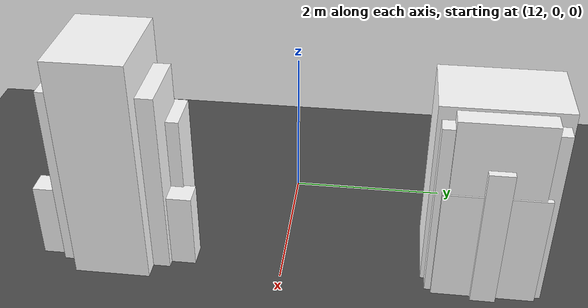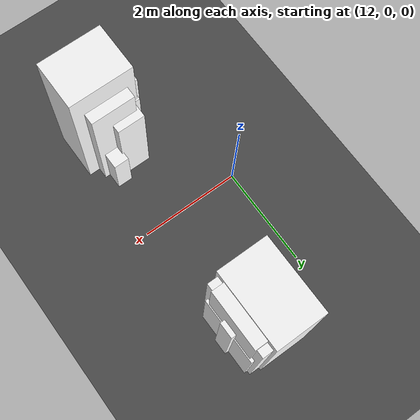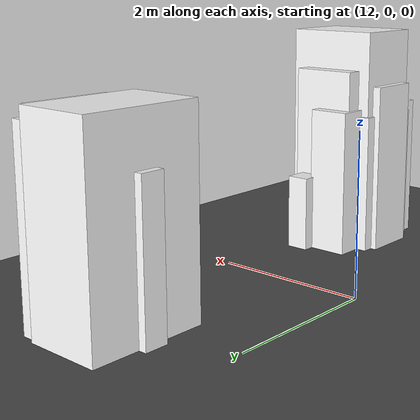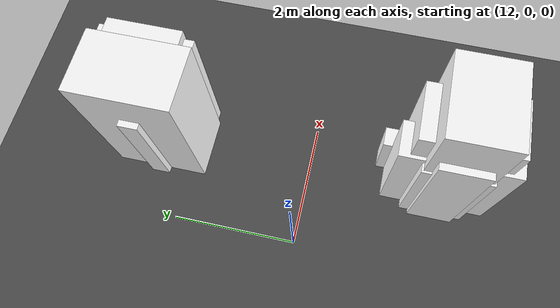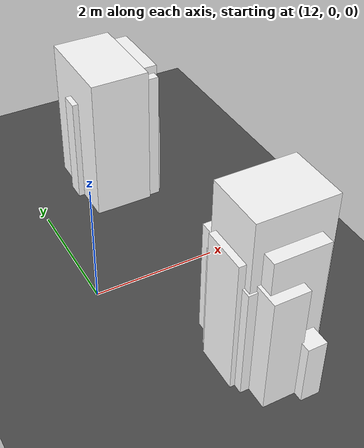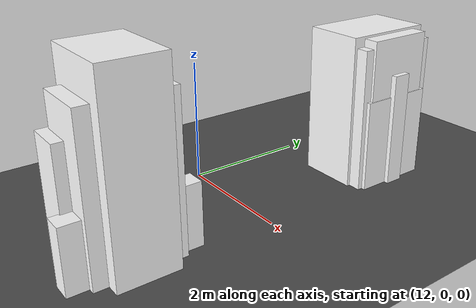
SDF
<sdf version="1.6">
 <world name="mirror_edge_world">
  <model name="ground_plane">
   <static>true</static>
   <link name="link">
    <collision name="collision">
     <geometry><plane><normal>0 0 1</normal><size>100 100</size></plane></geometry>
    </collision>
    <visual name="visual">
     <geometry><plane><normal>0 0 1</normal><size>100 100</size></plane></geometry>
     <material>
      <ambient>0.3 0.3 0.3 1</ambient>
      <diffuse>0.3 0.3 0.3 1</diffuse>
      <specular>0.5 0.5 0.5 1</specular>
      <emissive>0 0 0 1</emissive>
     </material>
    </visual>
   </link>
  </model>
  <model name="roadside_block_0_42_0">
   <static>true</static>
   <link name="link">
    <pose>13.76763786917452 -2.1033290080100766 1.3803398939745606 0 0 0</pose>
    <collision name="collision">
     <geometry><box><size>0.7788029403641517 0.7956750949372158 2.760679787949121</size></box></geometry>
    </collision>
    <visual name="visual">
     <geometry><box><size>0.7788029403641517 0.7956750949372158 2.760679787949121</size></box></geometry>
     <material>
      <ambient>1 1 1 1</ambient>
      <diffuse>1 1 1 1</diffuse>
      <specular>0.9 0.9 0.9 1</specular>
      <emissive>0.05 0.05 0.05 1</emissive>
     </material>
    </visual>
   </link>
  </model>
  <model name="roadside_block_0_43_0">
   <static>true</static>
   <link name="link">
    <pose>13.737724485107247 -2.1033290080100766 0.5 0 0 0</pose>
    <collision name="collision"><geometry><box><size>0.3 2.0 1.0</size></box></geometry></collision>
    <visual name="visual">
     <geometry><box><size>0.3 2.0 1.0</size></box></geometry>
     <material>
      <ambient>1 1 1 1</ambient>
      <diffuse>1 1 1 1</diffuse>
      <specular>0.9 0.9 0.9 1</specular>
      <emissive>0.05 0.05 0.05 1</emissive>
     </material>
    </visual>
   </link>
  </model>
  <model name="roadside_block_0_44_0">
   <static>true</static>
   <link name="link">
    <pose>13.707811101039972 2.496670991989923 1.0600478861862659 0 0 0</pose>
    <collision name="collision">
     <geometry><box><size>0.40122112812187394 1.3804413422950221 2.1200957723725318</size></box></geometry>
    </collision>
    <visual name="visual">
     <geometry><box><size>0.40122112812187394 1.3804413422950221 2.1200957723725318</size></box></geometry>
     <material>
      <ambient>1 1 1 1</ambient>
      <diffuse>1 1 1 1</diffuse>
      <specular>0.9 0.9 0.9 1</specular>
      <emissive>0.05 0.05 0.05 1</emissive>
     </material>
    </visual>
   </link>
  </model>
  <model name="roadside_block_0_45_0">
   <static>true</static>
   <link name="link">
    <pose>13.6778977169727 2.496670991989923 0.5 0 0 0</pose>
    <collision name="collision">
     <geometry><box><size>0.3 0.5637933193951308 1.0</size></box></geometry>
    </collision>
    <visual name="visual">
     <geometry><box><size>0.3 0.5637933193951308 1.0</size></box></geometry>
     <material>
      <ambient>1 1 1 1</ambient>
      <diffuse>1 1 1 1</diffuse>
      <specular>0.9 0.9 0.9 1</specular>
      <emissive>0.05 0.05 0.05 1</emissive>
     </material>
    </visual>
   </link>
  </model>
  <model name="roadside_block_0_46_0">
   <static>true</static>
   <link name="link">
    <pose>13.647984332905427 2.496670991989923 1.2294125881920335 0 0 0</pose>
    <collision name="collision">
     <geometry><box><size>0.8181149098422523 1.1003234568358744 2.458825176384067</size></box></geometry>
    </collision>
    <visual name="visual">
     <geometry><box><size>0.8181149098422523 1.1003234568358744 2.458825176384067</size></box></geometry>
     <material>
      <ambient>1 1 1 1</ambient>
      <diffuse>1 1 1 1</diffuse>
      <specular>0.9 0.9 0.9 1</specular>
      <emissive>0.05 0.05 0.05 1</emissive>
     </material>
    </visual>
   </link>
  </model>
  <model name="roadside_block_0_47_0">
   <static>true</static>
   <link name="link">
    <pose>13.618070948838152 2.496670991989923 1.1638799464638891 0 0 0</pose>
    <collision name="collision">
     <geometry><box><size>0.7916794082345031 1.400413953586316 2.3277598929277783</size></box></geometry>
    </collision>
    <visual name="visual">
     <geometry><box><size>0.7916794082345031 1.400413953586316 2.3277598929277783</size></box></geometry>
     <material>
      <ambient>1 1 1 1</ambient>
      <diffuse>1 1 1 1</diffuse>
      <specular>0.9 0.9 0.9 1</specular>
      <emissive>0.05 0.05 0.05 1</emissive>
     </material>
    </visual>
   </link>
  </model>
  <model name="roadside_block_0_48_0">
   <static>true</static>
   <link name="link">
    <pose>13.58815756477088 -2.1033290080100766 1.4853851885821556 0 0 0</pose>
    <collision name="collision">
     <geometry><box><size>1.229094731846194 0.948628093215531 2.9707703771643112</size></box></geometry>
    </collision>
    <visual name="visual">
     <geometry><box><size>1.229094731846194 0.948628093215531 2.9707703771643112</size></box></geometry>
     <material>
      <ambient>1 1 1 1</ambient>
      <diffuse>1 1 1 1</diffuse>
      <specular>0.9 0.9 0.9 1</specular>
      <emissive>0.05 0.05 0.05 1</emissive>
     </material>
    </visual>
   </link>
  </model>
  <model name="roadside_block_0_49_0">
   <static>true</static>
   <link name="link">
    <pose>13.558244180703607 -2.1033290080100766 1.2272705775469603 0 0 0</pose>
    <collision name="collision">
     <geometry><box><size>0.8566635081162102 1.3824336846027712 2.4545411550939207</size></box></geometry>
    </collision>
    <visual name="visual">
     <geometry><box><size>0.8566635081162102 1.3824336846027712 2.4545411550939207</size></box></geometry>
     <material>
      <ambient>1 1 1 1</ambient>
      <diffuse>1 1 1 1</diffuse>
      <specular>0.9 0.9 0.9 1</specular>
      <emissive>0.05 0.05 0.05 1</emissive>
     </material>
    </visual>
   </link>
  </model>
  <model name="roadside_block_0_50_0">
   <static>true</static>
   <link name="link">
    <pose>13.528330796636332 -2.1033290080100766 0.6718742228478987 0 0 0</pose>
    <collision name="collision">
     <geometry><box><size>0.872315107051598 0.6748088709553275 1.3437484456957973</size></box></geometry>
    </collision>
    <visual name="visual">
     <geometry><box><size>0.872315107051598 0.6748088709553275 1.3437484456957973</size></box></geometry>
     <material>
      <ambient>1 1 1 1</ambient>
      <diffuse>1 1 1 1</diffuse>
      <specular>0.9 0.9 0.9 1</specular>
      <emissive>0.05 0.05 0.05 1</emissive>
     </material>
    </visual>
   </link>
  </model>
  <model name="roadside_block_0_51_0">
   <static>true</static>
   <link name="link">
    <pose>13.49841741256906 2.496670991989923 0.7461830587182772 0 0 0</pose>
    <collision name="collision">
     <geometry><box><size>1.1567946021546198 1.2454959590467978 1.4923661174365543</size></box></geometry>
    </collision>
    <visual name="visual">
     <geometry><box><size>1.1567946021546198 1.2454959590467978 1.4923661174365543</size></box></geometry>
     <material>
      <ambient>1 1 1 1</ambient>
      <diffuse>1 1 1 1</diffuse>
      <specular>0.9 0.9 0.9 1</specular>
      <emissive>0.05 0.05 0.05 1</emissive>
     </material>
    </visual>
   </link>
  </model>
  <model name="roadside_block_0_52_0">
   <static>true</static>
   <link name="link">
    <pose>13.468504028501787 2.496670991989923 0.5 0 0 0</pose>
    <collision name="collision">
     <geometry><box><size>1.075347550247149 1.1275048168967032 1.0</size></box></geometry>
    </collision>
    <visual name="visual">
     <geometry><box><size>1.075347550247149 1.1275048168967032 1.0</size></box></geometry>
     <material>
      <ambient>1 1 1 1</ambient>
      <diffuse>1 1 1 1</diffuse>
      <specular>0.9 0.9 0.9 1</specular>
      <emissive>0.05 0.05 0.05 1</emissive>
     </material>
    </visual>
   </link>
  </model>
  <model name="roadside_block_0_53_0">
   <static>true</static>
   <link name="link">
    <pose>13.438590644434512 2.496670991989923 0.9287234621015706 0 0 0</pose>
    <collision name="collision">
     <geometry><box><size>1.4214285844566805 0.3 1.8574469242031413</size></box></geometry>
    </collision>
    <visual name="visual">
     <geometry><box><size>1.4214285844566805 0.3 1.8574469242031413</size></box></geometry>
     <material>
      <ambient>1 1 1 1</ambient>
      <diffuse>1 1 1 1</diffuse>
      <specular>0.9 0.9 0.9 1</specular>
      <emissive>0.05 0.05 0.05 1</emissive>
     </material>
    </visual>
   </link>
  </model>
  <model name="roadside_block_0_54_0">
   <static>true</static>
   <link name="link">
    <pose>13.40867726036724 -2.1033290080100766 0.6157507162741347 0 0 0</pose>
    <collision name="collision">
     <geometry><box><size>0.3875785725489359 0.5110777871763589 1.2315014325482694</size></box></geometry>
    </collision>
    <visual name="visual">
     <geometry><box><size>0.3875785725489359 0.5110777871763589 1.2315014325482694</size></box></geometry>
     <material>
      <ambient>1 1 1 1</ambient>
      <diffuse>1 1 1 1</diffuse>
      <specular>0.9 0.9 0.9 1</specular>
      <emissive>0.05 0.05 0.05 1</emissive>
     </material>
    </visual>
   </link>
  </model>
  <model name="roadside_block_0_55_0">
   <static>true</static>
   <link name="link">
    <pose>13.378763876299965 -2.1033290080100766 1.1219398090492296 0 0 0</pose>
    <collision name="collision">
     <geometry><box><size>1.0288513514365623 0.7184079271231449 2.2438796180984593</size></box></geometry>
    </collision>
    <visual name="visual">
     <geometry><box><size>1.0288513514365623 0.7184079271231449 2.2438796180984593</size></box></geometry>
     <material>
      <ambient>1 1 1 1</ambient>
      <diffuse>1 1 1 1</diffuse>
      <specular>0.9 0.9 0.9 1</specular>
      <emissive>0.05 0.05 0.05 1</emissive>
     </material>
    </visual>
   </link>
  </model>
  <model name="roadside_block_0_56_0">
   <static>true</static>
   <link name="link">
    <pose>13.348850492232692 -2.1033290080100766 0.9673626141124885 0 0 0</pose>
    <collision name="collision">
     <geometry><box><size>0.544045321286733 1.7077680024112198 1.934725228224977</size></box></geometry>
    </collision>
    <visual name="visual">
     <geometry><box><size>0.544045321286733 1.7077680024112198 1.934725228224977</size></box></geometry>
     <material>
      <ambient>1 1 1 1</ambient>
      <diffuse>1 1 1 1</diffuse>
      <specular>0.9 0.9 0.9 1</specular>
      <emissive>0.05 0.05 0.05 1</emissive>
     </material>
    </visual>
   </link>
  </model>
  <model name="roadside_block_0_57_0">
   <static>true</static>
   <link name="link">
    <pose>13.31893710816542 2.496670991989923 1.2472125894326755 0 0 0</pose>
    <collision name="collision">
     <geometry><box><size>0.9812835476834995 1.5002607174384068 2.494425178865351</size></box></geometry>
    </collision>
    <visual name="visual">
     <geometry><box><size>0.9812835476834995 1.5002607174384068 2.494425178865351</size></box></geometry>
     <material>
      <ambient>1 1 1 1</ambient>
      <diffuse>1 1 1 1</diffuse>
      <specular>0.9 0.9 0.9 1</specular>
      <emissive>0.05 0.05 0.05 1</emissive>
     </material>
    </visual>
   </link>
  </model>
  <model name="roadside_block_0_58_0">
   <static>true</static>
   <link name="link">
    <pose>13.289023724098145 -2.1033290080100766 0.5 0 0 0</pose>
    <collision name="collision"><geometry><box><size>0.3 0.718836572577314 1.0</size></box></geometry></collision>
    <visual name="visual">
     <geometry><box><size>0.3 0.718836572577314 1.0</size></box></geometry>
     <material>
      <ambient>1 1 1 1</ambient>
      <diffuse>1 1 1 1</diffuse>
      <specular>0.9 0.9 0.9 1</specular>
      <emissive>0.05 0.05 0.05 1</emissive>
     </material>
    </visual>
   </link>
  </model>
  <model name="roadside_block_0_59_0">
   <static>true</static>
   <link name="link">
    <pose>13.259110340030873 -2.1033290080100766 0.9219595716292718 0 0 0</pose>
    <collision name="collision">
     <geometry><box><size>0.6395794457428746 1.0104763317127488 1.8439191432585436</size></box></geometry>
    </collision>
    <visual name="visual">
     <geometry><box><size>0.6395794457428746 1.0104763317127488 1.8439191432585436</size></box></geometry>
     <material>
      <ambient>1 1 1 1</ambient>
      <diffuse>1 1 1 1</diffuse>
      <specular>0.9 0.9 0.9 1</specular>
      <emissive>0.05 0.05 0.05 1</emissive>
     </material>
    </visual>
   </link>
  </model>
 </world>
</sdf>
